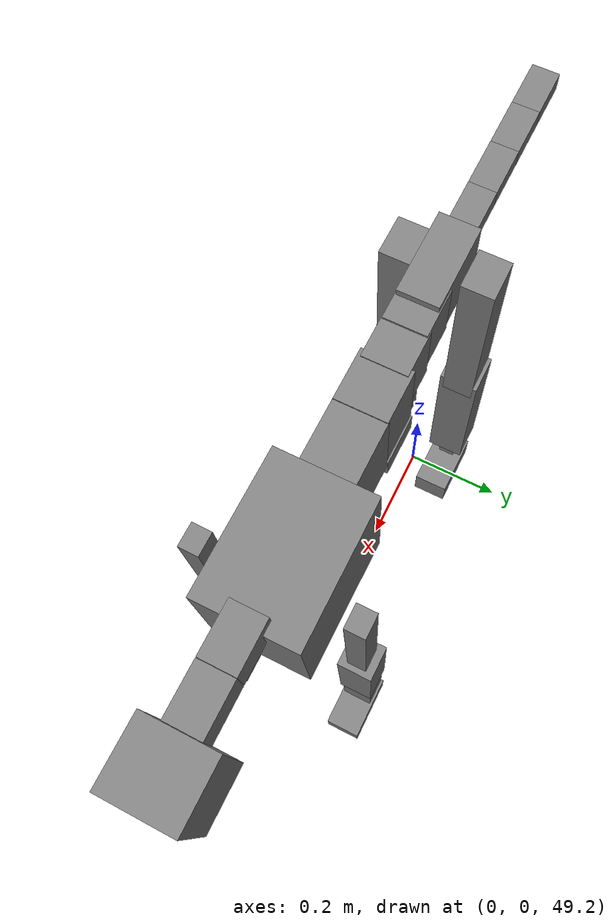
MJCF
<mujoco model="dog">

    <default>
        <joint armature="0.02" stiffness="1" damping="0.2" limited="true"/>
        <geom condim="3" friction="1 0.05 0.05" margin="0.01"/>
        <motor ctrllimited="true" ctrlrange="-1.0 1.0" forcelimited="true" gear="50"/>
    </default>

    <compiler inertiafromgeom="true" angle="radian"/>

    <option timestep="0.016" iterations="50" tolerance="1e-10" solver="Newton" jacobian="dense" cone="pyramidal"/>

    <size nconmax="20000" njmax="60000" nstack="5000000"/>
    <visual>
        <map force="0.1" zfar="30"/>
        <rgba haze="0.15 0.25 0.35 1"/>
        <quality shadowsize="2048"/>
        <global offwidth="800" offheight="800"/>
    </visual>

    <asset>
        <texture type="skybox" builtin="gradient" rgb1="0.3 0.5 0.7" rgb2="0 0 0" width="512" height="512"/>
        <texture name="texplane" type="2d" builtin="checker" rgb1=".2 .3 .4" rgb2=".1 0.15 0.2" width="512" height="512"
                 mark="cross" markrgb=".8 .8 .8"/>
        <texture name="texgeom" type="cube" builtin="flat" mark="cross" width="127" height="1278" rgb1="0.8 0.6 0.4"
                 rgb2="0.8 0.6 0.4" markrgb="1 1 1" random="0.01"/>

        <material name="matplane" reflectance="0.3" texture="texplane" texrepeat="1 1" texuniform="true"/>
        <material name="matgeom" texture="texgeom" texuniform="true" rgba="0.8 0.6 .4 1"/>
    </asset>

    <worldbody>
        <geom name="floor" pos="0 0 0" size="0 0 .25" type="plane" material="matplane" condim="3"/>

        <light directional="false" diffuse=".2 .2 .2" specular="0 0 0" pos="0 0 5" dir="0 0 -1" castshadow="false"/>
        <light mode="targetbodycom" target="torso" directional="false" diffuse=".8 .8 .8" specular="0.3 0.3 0.3"
               pos="0 0 4.0" dir="0 0 -1"/>

        <body name="root" pos="0 0 50">
            <freejoint name="root_1"/>
            <geom type="box" pos="0 0 -0.02" size="0.0774  0.0358  0.063" density="2030"/>

            <body name="spine1" pos="0.054 0 0">
                <joint name="spine1_y" axis="0 1 0" range="0 0.7" limited="true"/>
                <geom type="box" pos="0.02375 0 -0.03" size="0.04375  0.0375  0.05985" density="2030"/>

                <body name="spine2" pos="0.0612 0 0">
                    <joint name="spine2_y" axis="0 1 0" range="-0.15 0.15" limited="true"/>
                    <geom type="box" pos="0.03555  0  -0.04" size="0.04055  0.039  0.06615" density="2030"/>

                    <body name="spine3" pos="0.0730 0 0">
                        <joint name="spine3_y" axis="0 1 0" range="-0.15 0.15" limited="true"/>
                        <geom type="box" pos="0.03555  0  -0.057" size="0.04555  0.0445  0.081" density="2030"/>

                        <body name="spine4" pos="0.0780 0 0">
                            <joint name="spine4_y" axis="0 1 0" range="-0.15 0.15" limited="true"/>
                            <geom type="box" pos="0.05265  0  -0.07" size="0.05265  0.045  0.09135" density="2030"/>

                            <body name="torso" pos="0.1082 0 0">
                                <joint name="torso_y" axis="0 1 0" range="-0.15 0.15" limited="true"/>
                                <geom type="box" pos="0.11925  0  -0.085" size="0.11925  0.085  0.11745"
                                      density="2030"/>

                                <body name="neck1" pos="0.2160  0   0.0180">
                                    <joint name="neck1_y" axis="0 1 0" range="-1.2  -1" limited="true"/>
                                    <geom type="box" pos="0.0423  0  0" size="0.0423  0.03  0.036" density="2325"/>

                                    <body name="neck2" pos="0.0853  0  0">
                                        <joint name="neck2_y" axis="0 1 0" range="0.1  0" limited="true"/>
                                        <geom type="box" pos="0.0423  0  0" size="0.0423  0.03  0.036" density="2325"/>

                                        <body name="head" pos="0.0853  0  0">
                                            <joint name="head_y" axis="0 1 0" range="-0.3  -0.2" limited="true"/>
                                            <geom type="box" pos="0.0531  0  -0.055" size="0.0531  0.06  0.1044"
                                                  density="4030"/>

                                        </body>
                                    </body>
                                </body>

                                <body name="front_shoulder" pos="0.156  0   -0.0480">
                                    <joint name="front_shoulder_y" axis="0 1 0" range="-1 1.5" limited="true"/>
                                    <geom type="box" pos="0 0.13 -0.1376" size="0.0201  0.0171  0.1642" density="1158"/>
                                    <geom type="box" pos="0 -0.13 -0.1376" size="0.0201  0.0171  0.1642"
                                          density="1158"/>

                                    <body name="front_elbow" pos="0  0  -0.2751">
                                        <joint name="front_elbow_y" axis="0 1 0" range="-2 0" limited="true"/>
                                        <geom type="box" pos="0 0.13 -0.1270" size="0.0303  0.0310  0.1270"
                                              density="1081"/>
                                        <geom type="box" pos="0 -0.13 -0.1270" size="0.0303  0.0310  0.1270"
                                              density="1081"/>

                                        <body name="front_wrist" pos="0  0  -0.2540">
                                            <joint name="front_wrist_y" axis="0 1 0" range="-0.2 0" limited="true"/>
                                            <geom type="box" pos="0 0.13 -0.0734" size="0.0257  0.0285  0.0866"
                                                  density="1664"/>
                                            <geom type="box" pos="0 -0.13 -0.0734" size="0.0257  0.0285  0.0866"
                                                  density="1664"/>

                                            <body name="front_finger_end" pos="0  0  -0.1469">
                                                <joint name="front_finger_y" axis="0 1 0" range="-0.4 1"
                                                       limited="true"/>
                                                <geom type="box" pos="0.0330  0.13  -0.0196"
                                                      size="0.0605  0.0330  0.0346" density="1515"/>
                                                <geom type="box" pos="0.0330  -0.13  -0.0196"
                                                      size="0.0605  0.0330  0.0346" density="1515"/>

                                            </body>

                                        </body>
                                    </body>
                                </body>

                            </body>
                        </body>
                    </body>
                </body>
            </body>

            <body name="back_hip" pos="-0.03 0 -0.018">
                <joint name="back_hip_y" axis="0 1 0" range="-1.5 0.3" limited="true"/>
                <geom type="box" pos="0 0.07 -0.1584" size="0.0368  0.0289  0.1812" density="1154"/>
                <geom type="box" pos="0 -0.07 -0.1584" size="0.0368  0.0289  0.1812" density="1154"/>

                <body name="back_knee" pos="0  0  -0.3168">
                    <joint name="back_knee_y" axis="0 1 0" range="0 2.8" limited="true"/>
                    <geom type="box" pos="0 0.07 -0.1505" size="0.0366  0.0361  0.1660" density="1227"/>
                    <geom type="box" pos="0 -0.07 -0.1505" size="0.0366  0.0361  0.1660" density="1227"/>

                    <body name="back_ankle" pos="0  0  -0.3009">
                        <joint name="back_ankle_y" axis="0 1 0" range="-2.2 0" limited="true"/>
                        <geom type="box" pos="0 0.07 -0.0490" size="0.0167  0.0167  0.0603" density="1284"/>
                        <geom type="box" pos="0 -0.07 -0.0490" size="0.0167  0.0167  0.0603" density="1284"/>

                        <body name="back_toe_end" pos="0  0  -0.0980">
                            <joint name="back_toe_y" axis="0 1 0" range="-0.4 1" limited="true"/>
                            <geom type="box" pos="0.0350  0.07  -0.0186" size="0.0641  0.0350  0.0336" density="1515"/>
                            <geom type="box" pos="0.0350  -0.07  -0.0186" size="0.0641  0.0350  0.0336" density="1515"/>

                        </body>
                    </body>
                </body>
            </body>

            <body name="tail1" pos="-0.074 0 -0.006">
                <joint name="tail1_y" axis="0 1 0" range="-0.2 0.2" limited="true"/>
                <geom type="box" pos="-0.0536  0  0" size="0.045  0.025  0.0175" density="1587"/>

                <body name="tail2" pos="-0.09 0 0">
                    <joint name="tail2_y" axis="0 1 0" range="-0.2 0.2" limited="true"/>
                    <geom type="box" pos="-0.0536  0  0" size="0.045  0.025  0.0175" density="1587"/>

                    <body name="tail3" pos="-0.09 0 0">
                        <joint name="tail3_y" axis="0 1 0" range="-0.2 0.2" limited="true"/>
                        <geom type="box" pos="-0.0536  0  0" size="0.045  0.025  0.0175" density="1587"/>

                        <body name="tail4" pos="-0.09 0 0">
                            <joint name="tail4_y" axis="0 1 0" range="-0.2 0.2" limited="true"/>
                            <geom type="box" pos="-0.0536  0  0" size="0.045  0.025  0.0175" density="1587"/>

                        </body>
                    </body>
                </body>
            </body>
        </body>
    </worldbody>

    <actuator>
        <motor joint="spine1_y" forcerange="-150 150     "/>
        <motor joint="spine2_y" forcerange="-150 150     "/>
        <motor joint="spine3_y" forcerange="-150 150     "/>
        <motor joint="spine4_y" forcerange="-150 150     "/>
        <motor joint="torso_y" forcerange="-150 150     "/>
        <motor joint="neck1_y" forcerange="-100 100       "/>
        <motor joint="neck2_y" forcerange="-100 100       "/>
        <motor joint="head_y" forcerange="-150 150       "/>
        <motor joint="front_shoulder_y" forcerange="-104.38 109.92"/>
        <motor joint="front_elbow_y" forcerange="-196.97 128.62"/>
        <motor joint="front_wrist_y" forcerange="-121.49 106.69"/>
        <motor joint="front_finger_y" forcerange="-73.74 62.22"/>
        <motor joint="back_hip_y" forcerange="-272.88 311.83"/>
        <motor joint="back_knee_y" forcerange="-381.52 343.64"/>
        <motor joint="back_angle_y" forcerange="-113.01 53.72"/>
        <motor joint="back_toe_y" forcerange="-100.03 99.65"/>
        <motor joint="tail1_y" forcerange="-50 50     "/>
        <motor joint="tail2_y" forcerange="-50 50     "/>
        <motor joint="tail3_y" forcerange="-50 50     "/>
        <motor joint="tail4_y" forcerange="-50 50     "/>
    </actuator>
</mujoco>
